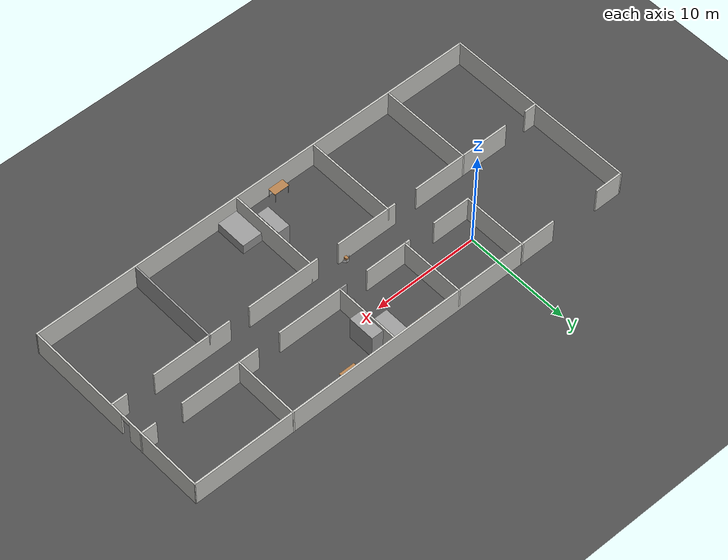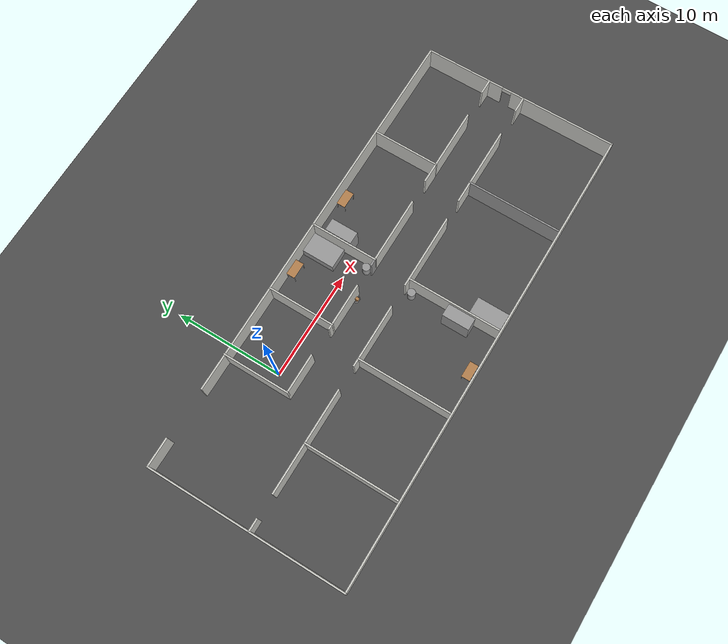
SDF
<sdf version="1.6">
 <world name="default">
  <model name="ground_plane">
   <static>1</static>
   <link name="link">
    <collision name="collision">
     <geometry><plane><normal>0 0 1</normal><size>100 100</size></plane></geometry>
     <surface><friction><ode><mu>100</mu><mu2>50</mu2></ode></friction></surface>
    </collision>
    <visual name="visual">
     <cast_shadows>0</cast_shadows>
     <geometry><plane><normal>0 0 1</normal><size>100 100</size></plane></geometry>
     <material>
      <script><uri>file://media/materials/scripts/gazebo.material</uri><name>Gazebo/DarkGrey</name></script>
     </material>
    </visual>
   </link>
  </model>
  <model name="hospital_base">
   <pose>10.0746 -4.90069 0 0 -0 0</pose>
   <link name="Wall_0">
    <collision name="Wall_0_Collision">
     <geometry><box><size>2.75 0.15 2.5</size></box></geometry>
     <pose>0 0 1.25 0 -0 0</pose>
    </collision>
    <visual name="Wall_0_Visual">
     <pose>0 0 1.25 0 -0 0</pose>
     <geometry><box><size>2.75 0.15 2.5</size></box></geometry>
     <material>
      <script><uri>file://media/materials/scripts/gazebo.material</uri><name>Gazebo/CeilingTiled</name></script>
      <ambient>1 1 1 1</ambient>
     </material>
     <meta><layer>0</layer></meta>
    </visual>
    <pose>-20.6253 9.1753 0 0 -0 0</pose>
   </link>
   <link name="Wall_10">
    <collision name="Wall_10_Collision">
     <geometry><box><size>3.75 0.15 2.5</size></box></geometry>
     <pose>0 0 1.25 0 -0 0</pose>
    </collision>
    <visual name="Wall_10_Visual">
     <pose>0 0 1.25 0 -0 0</pose>
     <geometry><box><size>3.75 0.15 2.5</size></box></geometry>
     <material>
      <script><uri>file://media/materials/scripts/gazebo.material</uri><name>Gazebo/CeilingTiled</name></script>
      <ambient>1 1 1 1</ambient>
     </material>
     <meta><layer>0</layer></meta>
    </visual>
    <pose>-9.4395 3.0224 0 0 -0 0</pose>
   </link>
   <link name="Wall_12">
    <collision name="Wall_12_Collision">
     <geometry><box><size>4.5 0.15 2.5</size></box></geometry>
     <pose>0 0 1.25 0 -0 0</pose>
    </collision>
    <visual name="Wall_12_Visual">
     <pose>0 0 1.25 0 -0 0</pose>
     <geometry><box><size>4.5 0.15 2.5</size></box></geometry>
     <material>
      <script><uri>file://media/materials/scripts/gazebo.material</uri><name>Gazebo/CeilingTiled</name></script>
      <ambient>1 1 1 1</ambient>
     </material>
     <meta><layer>0</layer></meta>
    </visual>
    <pose>-2.8223 2.986 0 0 -0 0</pose>
   </link>
   <link name="Wall_14">
    <collision name="Wall_14_Collision">
     <geometry><box><size>6.25 0.15 2.5</size></box></geometry>
     <pose>0 0 1.25 0 -0 0</pose>
    </collision>
    <visual name="Wall_14_Visual">
     <pose>0 0 1.25 0 -0 0</pose>
     <geometry><box><size>6.25 0.15 2.5</size></box></geometry>
     <material>
      <script><uri>file://media/materials/scripts/gazebo.material</uri><name>Gazebo/CeilingTiled</name></script>
      <ambient>1 1 1 1</ambient>
     </material>
     <meta><layer>0</layer></meta>
    </visual>
    <pose>-4.5741 6.0195 0 0 -0 -1.5708</pose>
   </link>
   <link name="Wall_16">
    <collision name="Wall_16_Collision">
     <geometry><box><size>0.75 0.15 2.5</size></box></geometry>
     <pose>0 0 1.25 0 -0 0</pose>
    </collision>
    <visual name="Wall_16_Visual">
     <pose>0 0 1.25 0 -0 0</pose>
     <geometry><box><size>0.75 0.15 2.5</size></box></geometry>
     <material>
      <script><uri>file://media/materials/scripts/gazebo.material</uri><name>Gazebo/Grey</name></script>
      <ambient>1 1 1 1</ambient>
     </material>
     <meta><layer>0</layer></meta>
    </visual>
    <pose>1.8094 2.9331 0 0 -0 0</pose>
   </link>
   <link name="Wall_17">
    <collision name="Wall_17_Collision">
     <geometry><box><size>6.25 0.15 2.5</size></box></geometry>
     <pose>0 0 1.25 0 -0 0</pose>
    </collision>
    <visual name="Wall_17_Visual">
     <pose>0 0 1.25 0 -0 0</pose>
     <geometry><box><size>6.25 0.15 2.5</size></box></geometry>
     <material>
      <script><uri>file://media/materials/scripts/gazebo.material</uri><name>Gazebo/CeilingTiled</name></script>
      <ambient>1 1 1 1</ambient>
     </material>
     <meta><layer>0</layer></meta>
    </visual>
    <pose>2.1094 5.9831 0 0 -0 1.5708</pose>
   </link>
   <link name="Wall_19">
    <collision name="Wall_19_Collision">
     <geometry><box><size>6.25 0.15 2.5</size></box></geometry>
     <pose>0 0 1.25 0 -0 0</pose>
    </collision>
    <visual name="Wall_19_Visual">
     <pose>0 0 1.25 0 -0 0</pose>
     <geometry><box><size>6.25 0.15 2.5</size></box></geometry>
     <material>
      <script><uri>file://media/materials/scripts/gazebo.material</uri><name>Gazebo/CeilingTiled</name></script>
      <ambient>1 1 1 1</ambient>
     </material>
     <meta><layer>0</layer></meta>
    </visual>
    <pose>5.1594 2.9331 0 0 -0 0</pose>
   </link>
   <link name="Wall_2">
    <collision name="Wall_2_Collision">
     <geometry><box><size>36.5 0.15 2.5</size></box></geometry>
     <pose>0 0 1.25 0 -0 0</pose>
    </collision>
    <visual name="Wall_2_Visual">
     <pose>0 0 1.25 0 -0 0</pose>
     <geometry><box><size>36.5 0.15 2.5</size></box></geometry>
     <material>
      <script><uri>file://media/materials/scripts/gazebo.material</uri><name>Gazebo/CeilingTiled</name></script>
      <ambient>1 1 1 1</ambient>
     </material>
     <meta><layer>0</layer></meta>
    </visual>
    <pose>3.6028 9.0695 0 0 -0 0</pose>
   </link>
   <link name="Wall_23">
    <collision name="Wall_23_Collision">
     <geometry><box><size>7.5 0.15 2.5</size></box></geometry>
     <pose>0 0 1.25 0 -0 0</pose>
    </collision>
    <visual name="Wall_23_Visual">
     <pose>0 0 1.25 0 -0 0</pose>
     <geometry><box><size>7.5 0.15 2.5</size></box></geometry>
     <material>
      <script><uri>file://media/materials/scripts/gazebo.material</uri><name>Gazebo/CeilingTiled</name></script>
      <ambient>1 1 1 1</ambient>
     </material>
     <meta><layer>0</layer></meta>
    </visual>
    <pose>14.1774 2.986 0 0 -0 0</pose>
   </link>
   <link name="Wall_25">
    <collision name="Wall_25_Collision">
     <geometry><box><size>1.5 0.15 2.5</size></box></geometry>
     <pose>0 0 1.25 0 -0 0</pose>
    </collision>
    <visual name="Wall_25_Visual">
     <pose>0 0 1.25 0 -0 0</pose>
     <geometry><box><size>1.5 0.15 2.5</size></box></geometry>
     <material>
      <script><uri>file://media/materials/scripts/gazebo.material</uri><name>Gazebo/CeilingTiled</name></script>
      <ambient>1 1 1 1</ambient>
     </material>
     <meta><layer>0</layer></meta>
    </visual>
    <pose>21.1755 3.0389 0 0 -0 0</pose>
   </link>
   <link name="Wall_27">
    <collision name="Wall_27_Collision">
     <geometry><box><size>6.25 0.15 2.5</size></box></geometry>
     <pose>0 0 1.25 0 -0 0</pose>
    </collision>
    <visual name="Wall_27_Visual">
     <pose>0 0 1.25 0 -0 0</pose>
     <geometry><box><size>6.25 0.15 2.5</size></box></geometry>
     <material>
      <script><uri>file://media/materials/scripts/gazebo.material</uri><name>Gazebo/CeilingTiled</name></script>
      <ambient>1 1 1 1</ambient>
     </material>
     <meta><layer>0</layer></meta>
    </visual>
    <pose>12.301 6.036 0 0 -0 1.5708</pose>
   </link>
   <link name="Wall_29">
    <collision name="Wall_29_Collision">
     <geometry><box><size>1.25 0.15 2.5</size></box></geometry>
     <pose>0 0 1.25 0 -0 0</pose>
    </collision>
    <visual name="Wall_29_Visual">
     <pose>0 0 1.25 0 -0 0</pose>
     <geometry><box><size>1.25 0.15 2.5</size></box></geometry>
     <material>
      <script><uri>file://media/materials/scripts/gazebo.material</uri><name>Gazebo/CeilingTiled</name></script>
      <ambient>1 1 1 1</ambient>
     </material>
     <meta><layer>0</layer></meta>
    </visual>
    <pose>-21.3753 -0.3996 0 0 -0 0</pose>
   </link>
   <link name="Wall_31">
    <collision name="Wall_31_Collision">
     <geometry><box><size>9.75 0.15 2.5</size></box></geometry>
     <pose>0 0 1.25 0 -0 0</pose>
    </collision>
    <visual name="Wall_31_Visual">
     <pose>0 0 1.25 0 -0 0</pose>
     <geometry><box><size>9.75 0.15 2.5</size></box></geometry>
     <material>
      <script><uri>file://media/materials/scripts/gazebo.material</uri><name>Gazebo/CeilingTiled</name></script>
      <ambient>1 1 1 1</ambient>
     </material>
     <meta><layer>0</layer></meta>
    </visual>
    <pose>-13.7397 -0.3996 0 0 -0 0</pose>
   </link>
   <link name="Wall_33">
    <collision name="Wall_33_Collision">
     <geometry><box><size>6 0.15 2.5</size></box></geometry>
     <pose>0 0 1.25 0 -0 0</pose>
    </collision>
    <visual name="Wall_33_Visual">
     <pose>0 0 1.25 0 -0 0</pose>
     <geometry><box><size>6 0.15 2.5</size></box></geometry>
     <material>
      <script><uri>file://media/materials/scripts/gazebo.material</uri><name>Gazebo/CeilingTiled</name></script>
      <ambient>1 1 1 1</ambient>
     </material>
     <meta><layer>0</layer></meta>
    </visual>
    <pose>-3.6593 -0.3996 0 0 -0 0</pose>
   </link>
   <link name="Wall_35">
    <collision name="Wall_35_Collision">
     <geometry><box><size>7 0.15 2.5</size></box></geometry>
     <pose>0 0 1.25 0 -0 0</pose>
    </collision>
    <visual name="Wall_35_Visual">
     <pose>0 0 1.25 0 -0 0</pose>
     <geometry><box><size>7 0.15 2.5</size></box></geometry>
     <material>
      <script><uri>file://media/materials/scripts/gazebo.material</uri><name>Gazebo/CeilingTiled</name></script>
      <ambient>1 1 1 1</ambient>
     </material>
     <meta><layer>0</layer></meta>
    </visual>
    <pose>4.9344 -0.3996 0 0 -0 0</pose>
   </link>
   <link name="Wall_37">
    <collision name="Wall_37_Collision">
     <geometry><box><size>7.5 0.15 2.5</size></box></geometry>
     <pose>0 0 1.25 0 -0 0</pose>
    </collision>
    <visual name="Wall_37_Visual">
     <pose>0 0 1.25 0 -0 0</pose>
     <geometry><box><size>7.5 0.15 2.5</size></box></geometry>
     <material>
      <script><uri>file://media/materials/scripts/gazebo.material</uri><name>Gazebo/CeilingTiled</name></script>
      <ambient>1 1 1 1</ambient>
     </material>
     <meta><layer>0</layer></meta>
    </visual>
    <pose>14.0716 -0.3996 0 0 -0 0</pose>
   </link>
   <link name="Wall_39">
    <collision name="Wall_39_Collision">
     <geometry><box><size>1.5 0.15 2.5</size></box></geometry>
     <pose>0 0 1.25 0 -0 0</pose>
    </collision>
    <visual name="Wall_39_Visual">
     <pose>0 0 1.25 0 -0 0</pose>
     <geometry><box><size>1.5 0.15 2.5</size></box></geometry>
     <material>
      <script><uri>file://media/materials/scripts/gazebo.material</uri><name>Gazebo/CeilingTiled</name></script>
      <ambient>1 1 1 1</ambient>
     </material>
     <meta><layer>0</layer></meta>
    </visual>
    <pose>21.1226 -0.3996 0 0 -0 0</pose>
   </link>
   <link name="Wall_41">
    <collision name="Wall_41_Collision">
     <geometry><box><size>8.75 0.15 2.5</size></box></geometry>
     <pose>0 0 1.25 0 -0 0</pose>
    </collision>
    <visual name="Wall_41_Visual">
     <pose>0 0 1.25 0 -0 0</pose>
     <geometry><box><size>8.75 0.15 2.5</size></box></geometry>
     <material>
      <script><uri>file://media/materials/scripts/gazebo.material</uri><name>Gazebo/Grey</name></script>
      <ambient>1 1 1 1</ambient>
     </material>
     <meta><layer>0</layer></meta>
    </visual>
    <pose>12.3539 -4.6996 0 0 -0 -1.5708</pose>
   </link>
   <link name="Wall_43">
    <collision name="Wall_43_Collision">
     <geometry><box><size>8.75 0.15 2.5</size></box></geometry>
     <pose>0 0 1.25 0 -0 0</pose>
    </collision>
    <visual name="Wall_43_Visual">
     <pose>0 0 1.25 0 -0 0</pose>
     <geometry><box><size>8.75 0.15 2.5</size></box></geometry>
     <material>
      <script><uri>file://media/materials/scripts/gazebo.material</uri><name>Gazebo/CeilingTiled</name></script>
      <ambient>1 1 1 1</ambient>
     </material>
     <meta><layer>0</layer></meta>
    </visual>
    <pose>2.1442 -4.6996 0 0 -0 -1.5708</pose>
   </link>
   <link name="Wall_45">
    <collision name="Wall_45_Collision">
     <geometry><box><size>8.75 0.15 2.5</size></box></geometry>
     <pose>0 0 1.25 0 -0 0</pose>
    </collision>
    <visual name="Wall_45_Visual">
     <pose>0 0 1.25 0 -0 0</pose>
     <geometry><box><size>8.75 0.15 2.5</size></box></geometry>
     <material>
      <script><uri>file://media/materials/scripts/gazebo.material</uri><name>Gazebo/CeilingTiled</name></script>
      <ambient>1 1 1 1</ambient>
     </material>
     <meta><layer>0</layer></meta>
    </visual>
    <pose>-5.8966 -4.6996 0 0 -0 -1.5708</pose>
   </link>
   <link name="Wall_47">
    <collision name="Wall_47_Collision">
     <geometry><box><size>8.75 0.15 2.5</size></box></geometry>
     <pose>0 0 1.25 0 -0 0</pose>
    </collision>
    <visual name="Wall_47_Visual">
     <pose>0 0 1.25 0 -0 0</pose>
     <geometry><box><size>8.75 0.15 2.5</size></box></geometry>
     <material>
      <script><uri>file://media/materials/scripts/gazebo.material</uri><name>Gazebo/CeilingTiled</name></script>
      <ambient>1 1 1 1</ambient>
     </material>
     <meta><layer>0</layer></meta>
    </visual>
    <pose>-13.9374 -4.6996 0 0 -0 -1.5708</pose>
   </link>
   <link name="Wall_5">
    <collision name="Wall_5_Collision">
     <geometry><box><size>18.5 0.15 2.5</size></box></geometry>
     <pose>0 0 1.25 0 -0 0</pose>
    </collision>
    <visual name="Wall_5_Visual">
     <pose>0 0 1.25 0 -0 0</pose>
     <geometry><box><size>18.5 0.15 2.5</size></box></geometry>
     <material>
      <script><uri>file://media/materials/scripts/gazebo.material</uri><name>Gazebo/CeilingTiled</name></script>
      <ambient>1 1 1 1</ambient>
     </material>
     <meta><layer>0</layer></meta>
    </visual>
    <pose>-21.9253 0.0003 0 0 -0 -1.5708</pose>
   </link>
   <link name="Wall_6">
    <collision name="Wall_6_Collision">
     <geometry><box><size>44 0.15 2.5</size></box></geometry>
     <pose>0 0 1.25 0 -0 0</pose>
    </collision>
    <visual name="Wall_6_Visual">
     <pose>0 0 1.25 0 -0 0</pose>
     <geometry><box><size>44 0.15 2.5</size></box></geometry>
     <material>
      <script><uri>file://media/materials/scripts/gazebo.material</uri><name>Gazebo/CeilingTiled</name></script>
      <ambient>1 1 1 1</ambient>
     </material>
     <meta><layer>0</layer></meta>
    </visual>
    <pose>-0.0003 -9.1747 0 0 -0 0</pose>
   </link>
   <link name="Wall_7">
    <pose>21.8513 -0.0526 0 0 -0 1.57885</pose>
    <visual name="Wall_7_Visual_0">
     <pose>-4.17652 0 1.25 0 -0 0</pose>
     <geometry><box><size>10.0418 0.15 2.5</size></box></geometry>
     <material>
      <script><uri>file://media/materials/scripts/gazebo.material</uri><name>Gazebo/CeilingTiled</name></script>
      <ambient>1 1 1 1</ambient>
     </material>
     <meta><layer>0</layer></meta>
    </visual>
    <collision name="Wall_7_Collision_0">
     <geometry><box><size>10.0418 0.15 2.5</size></box></geometry>
     <pose>-4.17652 0 1.25 0 -0 0</pose>
    </collision>
    <visual name="Wall_7_Visual_1">
     <pose>5.47088 0 1.25 0 -0 0</pose>
     <geometry><box><size>7.45303 0.15 2.5</size></box></geometry>
     <material>
      <script><uri>file://media/materials/scripts/gazebo.material</uri><name>Gazebo/CeilingTiled</name></script>
      <ambient>1 1 1 1</ambient>
     </material>
     <meta><layer>0</layer></meta>
    </visual>
    <collision name="Wall_7_Collision_1">
     <geometry><box><size>7.45303 0.15 2.5</size></box></geometry>
     <pose>5.47088 0 1.25 0 -0 0</pose>
    </collision>
    <visual name="Wall_7_Visual_2">
     <pose>1.29436 0 2.25 0 -0 0</pose>
     <geometry><box><size>0.9 0.15 0.5</size></box></geometry>
     <material>
      <script><uri>file://media/materials/scripts/gazebo.material</uri><name>Gazebo/CeilingTiled</name></script>
      <ambient>1 1 1 1</ambient>
     </material>
     <meta><layer>0</layer></meta>
    </visual>
    <collision name="Wall_7_Collision_2">
     <geometry><box><size>0.9 0.15 0.5</size></box></geometry>
     <pose>1.29436 0 2.25 0 -0 0</pose>
    </collision>
   </link>
   <link name="Wall_9">
    <collision name="Wall_9_Collision">
     <geometry><box><size>6.25 0.15 2.5</size></box></geometry>
     <pose>0 0 1.25 0 -0 0</pose>
    </collision>
    <visual name="Wall_9_Visual">
     <pose>0 0 1.25 0 -0 0</pose>
     <geometry><box><size>6.25 0.15 2.5</size></box></geometry>
     <material>
      <script><uri>file://media/materials/scripts/gazebo.material</uri><name>Gazebo/CeilingTiled</name></script>
      <ambient>1 1 1 1</ambient>
     </material>
     <meta><layer>0</layer></meta>
    </visual>
    <pose>-11.2395 6.0724 0 0 -0 -1.5708</pose>
   </link>
   <static>1</static>
  </model>
  <model name="unit_box_1_clone_1">
   <pose>13.3078 -12.4311 0.499989 -0 -1.2e-05 -6e-06</pose>
   <link name="link">
    <inertial>
     <mass>1</mass>
     <inertia>
      <ixx>0.166667</ixx>
      <ixy>0</ixy>
      <ixz>0</ixz>
      <iyy>0.166667</iyy>
      <iyz>0</iyz>
      <izz>0.166667</izz>
     </inertia>
    </inertial>
    <collision name="collision"><geometry><box><size>1.90543 2.99439 1</size></box></geometry></collision>
    <visual name="visual">
     <geometry><box><size>1.90543 2.99439 1</size></box></geometry>
     <material>
      <script><name>Gazebo/Grey</name><uri>file://media/materials/scripts/gazebo.material</uri></script>
     </material>
    </visual>
   </link>
  </model>
  <model name="unit_box_1_clone_6">
   <pose>11.0495 2.53281 0.499989 0 1.2e-05 -0.000166</pose>
   <link name="link">
    <inertial>
     <mass>1</mass>
     <inertia>
      <ixx>0.166667</ixx>
      <ixy>0</ixy>
      <ixz>0</ixz>
      <iyy>0.166667</iyy>
      <iyz>0</iyz>
      <izz>0.166667</izz>
     </inertia>
    </inertial>
    <collision name="collision"><geometry><box><size>1.90543 2.99439 1</size></box></geometry></collision>
    <visual name="visual">
     <geometry><box><size>1.90543 2.99439 1</size></box></geometry>
     <material>
      <script><name>Gazebo/Grey</name><uri>file://media/materials/scripts/gazebo.material</uri></script>
     </material>
    </visual>
   </link>
  </model>
  <model name="unit_cylinder_clone_0">
   <pose>11.6867 -5.87007 0.499992 0 -0 0</pose>
   <link name="link">
    <inertial>
     <mass>1</mass>
     <inertia><ixx>0.145833</ixx><ixy>0</ixy><ixz>0</ixz><iyy>0.145833</iyy><iyz>0</iyz><izz>0.125</izz></inertia>
    </inertial>
    <collision name="collision">
     <geometry><cylinder><radius>0.361483</radius><length>1</length></cylinder></geometry>
    </collision>
    <visual name="visual">
     <geometry><cylinder><radius>0.361483</radius><length>1</length></cylinder></geometry>
     <material>
      <script><name>Gazebo/Grey</name><uri>file://media/materials/scripts/gazebo.material</uri></script>
     </material>
    </visual>
   </link>
  </model>
  <model name="unit_box_2_clone_0">
   <pose>11.4893 -10.5003 1.19041 0 -0 8.2e-05</pose>
   <link name="link">
    <inertial>
     <mass>1</mass>
     <inertia>
      <ixx>0.166667</ixx>
      <ixy>0</ixy>
      <ixz>0</ixz>
      <iyy>0.166667</iyy>
      <iyz>0</iyz>
      <izz>0.166667</izz>
     </inertia>
    </inertial>
    <collision name="collision"><geometry><box><size>1.13758 2.51147 2.38082</size></box></geometry></collision>
    <visual name="visual">
     <geometry><box><size>1.13758 2.51147 2.38082</size></box></geometry>
     <material>
      <script><name>Gazebo/Grey</name><uri>file://media/materials/scripts/gazebo.material</uri></script>
     </material>
    </visual>
   </link>
  </model>
  <model name="unit_box_2_clone_4">
   <pose>12.9009 1.81429 1.1904 4e-06 1e-06 8.3e-05</pose>
   <link name="link">
    <inertial>
     <mass>1</mass>
     <inertia>
      <ixx>0.166667</ixx>
      <ixy>0</ixy>
      <ixz>0</ixz>
      <iyy>0.166667</iyy>
      <iyz>0</iyz>
      <izz>0.166667</izz>
     </inertia>
    </inertial>
    <collision name="collision"><geometry><box><size>1.13758 2.51147 2.38082</size></box></geometry></collision>
    <visual name="visual">
     <geometry><box><size>1.13758 2.51147 2.38082</size></box></geometry>
     <material>
      <script><name>Gazebo/Grey</name><uri>file://media/materials/scripts/gazebo.material</uri></script>
     </material>
    </visual>
   </link>
  </model>
  <model name="table_clone_0">
   <static>1</static>
   <link name="link">
    <collision name="surface">
     <pose>0 0 1 0 -0 0</pose>
     <geometry><box><size>1.5 0.8 0.03</size></box></geometry>
     <surface><friction><ode><mu>0.6</mu><mu2>0.6</mu2></ode></friction></surface>
    </collision>
    <visual name="visual1">
     <pose>0 0 1 0 -0 0</pose>
     <geometry><box><size>1.5 0.8 0.03</size></box></geometry>
     <material>
      <script><uri>file://media/materials/scripts/gazebo.material</uri><name>Gazebo/Wood</name></script>
     </material>
    </visual>
    <collision name="front_left_leg">
     <pose>0.68 0.38 0.5 0 -0 0</pose>
     <geometry><cylinder><radius>0.02</radius><length>1</length></cylinder></geometry>
    </collision>
    <visual name="front_left_leg">
     <pose>0.68 0.38 0.5 0 -0 0</pose>
     <geometry><cylinder><radius>0.02</radius><length>1</length></cylinder></geometry>
     <material>
      <script><uri>file://media/materials/scripts/gazebo.material</uri><name>Gazebo/Grey</name></script>
     </material>
    </visual>
    <collision name="front_right_leg">
     <pose>0.68 -0.38 0.5 0 -0 0</pose>
     <geometry><cylinder><radius>0.02</radius><length>1</length></cylinder></geometry>
    </collision>
    <visual name="front_right_leg">
     <pose>0.68 -0.38 0.5 0 -0 0</pose>
     <geometry><cylinder><radius>0.02</radius><length>1</length></cylinder></geometry>
     <material>
      <script><uri>file://media/materials/scripts/gazebo.material</uri><name>Gazebo/Grey</name></script>
     </material>
    </visual>
    <collision name="back_right_leg">
     <pose>-0.68 -0.38 0.5 0 -0 0</pose>
     <geometry><cylinder><radius>0.02</radius><length>1</length></cylinder></geometry>
    </collision>
    <visual name="back_right_leg">
     <pose>-0.68 -0.38 0.5 0 -0 0</pose>
     <geometry><cylinder><radius>0.02</radius><length>1</length></cylinder></geometry>
     <material>
      <script><uri>file://media/materials/scripts/gazebo.material</uri><name>Gazebo/Grey</name></script>
     </material>
    </visual>
    <collision name="back_left_leg">
     <pose>-0.68 0.38 0.5 0 -0 0</pose>
     <geometry><cylinder><radius>0.02</radius><length>1</length></cylinder></geometry>
    </collision>
    <visual name="back_left_leg">
     <pose>-0.68 0.38 0.5 0 -0 0</pose>
     <geometry><cylinder><radius>0.02</radius><length>1</length></cylinder></geometry>
     <material>
      <script><uri>file://media/materials/scripts/gazebo.material</uri><name>Gazebo/Grey</name></script>
     </material>
    </visual>
   </link>
   <pose>8.32318 -13.5079 0 0 -0 0</pose>
  </model>
  <model name="table_clone_4">
   <static>1</static>
   <link name="link">
    <collision name="surface">
     <pose>0 0 1 0 -0 0</pose>
     <geometry><box><size>1.5 0.8 0.03</size></box></geometry>
     <surface><friction><ode><mu>0.6</mu><mu2>0.6</mu2></ode></friction></surface>
    </collision>
    <visual name="visual1">
     <pose>0 0 1 0 -0 0</pose>
     <geometry><box><size>1.5 0.8 0.03</size></box></geometry>
     <material>
      <script><uri>file://media/materials/scripts/gazebo.material</uri><name>Gazebo/Wood</name></script>
     </material>
    </visual>
    <collision name="front_left_leg">
     <pose>0.68 0.38 0.5 0 -0 0</pose>
     <geometry><cylinder><radius>0.02</radius><length>1</length></cylinder></geometry>
    </collision>
    <visual name="front_left_leg">
     <pose>0.68 0.38 0.5 0 -0 0</pose>
     <geometry><cylinder><radius>0.02</radius><length>1</length></cylinder></geometry>
     <material>
      <script><uri>file://media/materials/scripts/gazebo.material</uri><name>Gazebo/Grey</name></script>
     </material>
    </visual>
    <collision name="front_right_leg">
     <pose>0.68 -0.38 0.5 0 -0 0</pose>
     <geometry><cylinder><radius>0.02</radius><length>1</length></cylinder></geometry>
    </collision>
    <visual name="front_right_leg">
     <pose>0.68 -0.38 0.5 0 -0 0</pose>
     <geometry><cylinder><radius>0.02</radius><length>1</length></cylinder></geometry>
     <material>
      <script><uri>file://media/materials/scripts/gazebo.material</uri><name>Gazebo/Grey</name></script>
     </material>
    </visual>
    <collision name="back_right_leg">
     <pose>-0.68 -0.38 0.5 0 -0 0</pose>
     <geometry><cylinder><radius>0.02</radius><length>1</length></cylinder></geometry>
    </collision>
    <visual name="back_right_leg">
     <pose>-0.68 -0.38 0.5 0 -0 0</pose>
     <geometry><cylinder><radius>0.02</radius><length>1</length></cylinder></geometry>
     <material>
      <script><uri>file://media/materials/scripts/gazebo.material</uri><name>Gazebo/Grey</name></script>
     </material>
    </visual>
    <collision name="back_left_leg">
     <pose>-0.68 0.38 0.5 0 -0 0</pose>
     <geometry><cylinder><radius>0.02</radius><length>1</length></cylinder></geometry>
    </collision>
    <visual name="back_left_leg">
     <pose>-0.68 0.38 0.5 0 -0 0</pose>
     <geometry><cylinder><radius>0.02</radius><length>1</length></cylinder></geometry>
     <material>
      <script><uri>file://media/materials/scripts/gazebo.material</uri><name>Gazebo/Grey</name></script>
     </material>
    </visual>
   </link>
   <pose>16.0786 3.48932 0 0 -0 0</pose>
  </model>
  <model name="table_clone_6">
   <static>1</static>
   <link name="link">
    <collision name="surface">
     <pose>0 0 1 0 -0 0</pose>
     <geometry><box><size>1.5 0.8 0.03</size></box></geometry>
     <surface><friction><ode><mu>0.6</mu><mu2>0.6</mu2></ode></friction></surface>
    </collision>
    <visual name="visual1">
     <pose>0 0 1 0 -0 0</pose>
     <geometry><box><size>1.5 0.8 0.03</size></box></geometry>
     <material>
      <script><uri>file://media/materials/scripts/gazebo.material</uri><name>Gazebo/Wood</name></script>
     </material>
    </visual>
    <collision name="front_left_leg">
     <pose>0.68 0.38 0.5 0 -0 0</pose>
     <geometry><cylinder><radius>0.02</radius><length>1</length></cylinder></geometry>
    </collision>
    <visual name="front_left_leg">
     <pose>0.68 0.38 0.5 0 -0 0</pose>
     <geometry><cylinder><radius>0.02</radius><length>1</length></cylinder></geometry>
     <material>
      <script><uri>file://media/materials/scripts/gazebo.material</uri><name>Gazebo/Grey</name></script>
     </material>
    </visual>
    <collision name="front_right_leg">
     <pose>0.68 -0.38 0.5 0 -0 0</pose>
     <geometry><cylinder><radius>0.02</radius><length>1</length></cylinder></geometry>
    </collision>
    <visual name="front_right_leg">
     <pose>0.68 -0.38 0.5 0 -0 0</pose>
     <geometry><cylinder><radius>0.02</radius><length>1</length></cylinder></geometry>
     <material>
      <script><uri>file://media/materials/scripts/gazebo.material</uri><name>Gazebo/Grey</name></script>
     </material>
    </visual>
    <collision name="back_right_leg">
     <pose>-0.68 -0.38 0.5 0 -0 0</pose>
     <geometry><cylinder><radius>0.02</radius><length>1</length></cylinder></geometry>
    </collision>
    <visual name="back_right_leg">
     <pose>-0.68 -0.38 0.5 0 -0 0</pose>
     <geometry><cylinder><radius>0.02</radius><length>1</length></cylinder></geometry>
     <material>
      <script><uri>file://media/materials/scripts/gazebo.material</uri><name>Gazebo/Grey</name></script>
     </material>
    </visual>
    <collision name="back_left_leg">
     <pose>-0.68 0.38 0.5 0 -0 0</pose>
     <geometry><cylinder><radius>0.02</radius><length>1</length></cylinder></geometry>
    </collision>
    <visual name="back_left_leg">
     <pose>-0.68 0.38 0.5 0 -0 0</pose>
     <geometry><cylinder><radius>0.02</radius><length>1</length></cylinder></geometry>
     <material>
      <script><uri>file://media/materials/scripts/gazebo.material</uri><name>Gazebo/Grey</name></script>
     </material>
    </visual>
   </link>
   <pose>8.34509 3.69914 0 0 -0 0</pose>
  </model>
  <model name="unit_cylinder_clone_3">
   <pose>11.6267 -1.40121 0.499992 0 -0 0</pose>
   <link name="link">
    <inertial>
     <mass>1</mass>
     <inertia><ixx>0.145833</ixx><ixy>0</ixy><ixz>0</ixz><iyy>0.145833</iyy><iyz>0</iyz><izz>0.125</izz></inertia>
    </inertial>
    <collision name="collision">
     <geometry><cylinder><radius>0.361483</radius><length>1</length></cylinder></geometry>
    </collision>
    <visual name="visual">
     <geometry><cylinder><radius>0.361483</radius><length>1</length></cylinder></geometry>
     <material>
      <script><name>Gazebo/Grey</name><uri>file://media/materials/scripts/gazebo.material</uri></script>
     </material>
    </visual>
   </link>
  </model>
  <model name="Support_box_wood_clone_0">
   <link name="link">
    <inertial>
     <mass>0.0406949</mass>
     <inertia>
      <ixx>0.00114102</ixx>
      <ixy>0</ixy>
      <ixz>0</ixz>
      <iyy>0.00102768</iyy>
      <iyz>0</iyz>
      <izz>0.000581951</izz>
     </inertia>
    </inertial>
    <pose>0.062754 0.860403 -0.243846 0 -0 0</pose>
    <visual name="visual">
     <geometry><box><size>0.252854 0.320175 0.483682</size></box></geometry>
     <material>
      <script><name>Gazebo/Wood</name><uri>file://media/materials/scripts/gazebo.material</uri></script>
      <shader type="vertex"><normal_map>__default__</normal_map></shader>
      <ambient>0.3 0.3 0.3 1</ambient>
      <diffuse>0.7 0.7 0.7 1</diffuse>
      <specular>0.01 0.01 0.01 1</specular>
      <emissive>0 0 0 1</emissive>
     </material>
    </visual>
    <visual name="ModelPreview_4::link::visual_1">
     <geometry><box><size>0.252854 0.320175 0.483682</size></box></geometry>
     <material>
      <script><name>Gazebo/Wood</name><uri>file://media/materials/scripts/gazebo.material</uri></script>
      <shader type="vertex"><normal_map>__default__</normal_map></shader>
      <ambient>0.3 0.3 0.3 1</ambient>
      <diffuse>0.7 0.7 0.7 1</diffuse>
      <specular>0.01 0.01 0.01 1</specular>
      <emissive>0 0 0 1</emissive>
     </material>
    </visual>
    <collision name="collision">
     <geometry><box><size>0.262854 0.320175 0.483683</size></box></geometry>
     <surface>
      <friction>
       <ode><mu>1</mu><mu2>1</mu2><fdir1>0 0 0</fdir1><slip1>0</slip1><slip2>0</slip2></ode>
       <torsional>
        <coefficient>1</coefficient>
        <patch_radius>0</patch_radius>
        <surface_radius>0</surface_radius>
        <use_patch_radius>1</use_patch_radius>
        <ode><slip>0</slip></ode>
       </torsional>
      </friction>
      <bounce><restitution_coefficient>0</restitution_coefficient><threshold>1e+06</threshold></bounce>
      <contact>
       <collide_without_contact>0</collide_without_contact>
       <collide_without_contact_bitmask>1</collide_without_contact_bitmask>
       <collide_bitmask>1</collide_bitmask>
       <ode>
        <soft_cfm>0</soft_cfm>
        <soft_erp>0.2</soft_erp>
        <kp>1e+13</kp>
        <kd>1</kd>
        <max_vel>0.01</max_vel>
        <min_depth>0</min_depth>
       </ode>
       <bullet>
        <split_impulse>1</split_impulse>
        <split_impulse_penetration_threshold>-0.01</split_impulse_penetration_threshold>
        <soft_cfm>0</soft_cfm>
        <soft_erp>0.2</soft_erp>
        <kp>1e+13</kp>
        <kd>1</kd>
       </bullet>
      </contact>
     </surface>
    </collision>
   </link>
   <static>0</static>
   <pose>8.67328 -5.92559 0.485688 0 0 -2e-05</pose>
  </model>
  <model name="Support_box_wood_clone_1_clone_clone">
   <link name="link">
    <inertial>
     <mass>0.0406949</mass>
     <inertia>
      <ixx>0.00114102</ixx>
      <ixy>0</ixy>
      <ixz>0</ixz>
      <iyy>0.00102768</iyy>
      <iyz>0</iyz>
      <izz>0.000581951</izz>
     </inertia>
    </inertial>
    <pose>0.062754 0.860403 -0.243846 0 -0 0</pose>
    <visual name="visual">
     <geometry><box><size>0.252854 0.320175 0.483682</size></box></geometry>
     <material>
      <script><name>Gazebo/Wood</name><uri>file://media/materials/scripts/gazebo.material</uri></script>
      <shader type="vertex"><normal_map>__default__</normal_map></shader>
      <ambient>0.3 0.3 0.3 1</ambient>
      <diffuse>0.7 0.7 0.7 1</diffuse>
      <specular>0.01 0.01 0.01 1</specular>
      <emissive>0 0 0 1</emissive>
     </material>
    </visual>
    <visual name="ModelPreview_4::link::visual_1">
     <geometry><box><size>0.252854 0.320175 0.483682</size></box></geometry>
     <material>
      <script><name>Gazebo/Wood</name><uri>file://media/materials/scripts/gazebo.material</uri></script>
      <shader type="vertex"><normal_map>__default__</normal_map></shader>
      <ambient>0.3 0.3 0.3 1</ambient>
      <diffuse>0.7 0.7 0.7 1</diffuse>
      <specular>0.01 0.01 0.01 1</specular>
      <emissive>0 0 0 1</emissive>
     </material>
    </visual>
    <collision name="collision">
     <geometry><box><size>0.262854 0.320175 0.483683</size></box></geometry>
     <surface>
      <friction>
       <ode><mu>1</mu><mu2>1</mu2><fdir1>0 0 0</fdir1><slip1>0</slip1><slip2>0</slip2></ode>
       <torsional>
        <coefficient>1</coefficient>
        <patch_radius>0</patch_radius>
        <surface_radius>0</surface_radius>
        <use_patch_radius>1</use_patch_radius>
        <ode><slip>0</slip></ode>
       </torsional>
      </friction>
      <bounce><restitution_coefficient>0</restitution_coefficient><threshold>1e+06</threshold></bounce>
      <contact>
       <collide_without_contact>0</collide_without_contact>
       <collide_without_contact_bitmask>1</collide_without_contact_bitmask>
       <collide_bitmask>1</collide_bitmask>
       <ode>
        <soft_cfm>0</soft_cfm>
        <soft_erp>0.2</soft_erp>
        <kp>1e+13</kp>
        <kd>1</kd>
        <max_vel>0.01</max_vel>
        <min_depth>0</min_depth>
       </ode>
       <bullet>
        <split_impulse>1</split_impulse>
        <split_impulse_penetration_threshold>-0.01</split_impulse_penetration_threshold>
        <soft_cfm>0</soft_cfm>
        <soft_erp>0.2</soft_erp>
        <kp>1e+13</kp>
        <kd>1</kd>
       </bullet>
      </contact>
     </surface>
    </collision>
   </link>
   <static>0</static>
   <pose>8.90236 -3.01033 0.485668 1.7e-05 -1.1e-05 -0.001249</pose>
  </model>
  <model name="Aruco tag102">
   <static>1</static>
   <link name="robot_link">
    <visual name="body_visual">
     <geometry><box><size>0.3 0.3 0.02</size></box></geometry>
     <material>
      <script><uri>model://tag_102/materials/scripts/tag.material</uri><name>aruco_tag_102</name></script>
     </material>
    </visual>
   </link>
   <pose>8.73074 -4.89835 0.2 1.57 -0 0</pose>
  </model>
  <model name="Aruco tag102_clone">
   <static>1</static>
   <link name="robot_link">
    <visual name="body_visual">
     <geometry><box><size>0.3 0.3 0.02</size></box></geometry>
     <material>
      <script><uri>model://tag_102/materials/scripts/tag.material</uri><name>aruco_tag_102</name></script>
     </material>
    </visual>
   </link>
   <pose>8.97075 -5.01896 0.2 1.57019 -0.000517 -0.910001</pose>
  </model>
  <model name="Aruco tag102_clone_0">
   <static>1</static>
   <link name="robot_link">
    <visual name="body_visual">
     <geometry><box><size>0.3 0.3 0.02</size></box></geometry>
     <material>
      <script><uri>model://tag_102/materials/scripts/tag.material</uri><name>aruco_tag_102</name></script>
     </material>
    </visual>
   </link>
   <pose>8.48713 -5.02074 0.2 1.57 -0 0.909999</pose>
  </model>
  <model name="Aruco tag107">
   <static>1</static>
   <link name="robot_link">
    <visual name="body_visual">
     <geometry><box><size>0.3 0.3 0.02</size></box></geometry>
     <material>
      <script><uri>model://tag_107/materials/scripts/tag.material</uri><name>aruco_tag_107</name></script>
     </material>
    </visual>
   </link>
   <pose>8.97577 -2.30626 0.2 1.57 -0 0</pose>
  </model>
  <model name="Aruco tag107_clone">
   <static>1</static>
   <link name="robot_link">
    <visual name="body_visual">
     <geometry><box><size>0.3 0.3 0.02</size></box></geometry>
     <material>
      <script><uri>model://tag_107/materials/scripts/tag.material</uri><name>aruco_tag_107</name></script>
     </material>
    </visual>
   </link>
   <pose>8.73112 -2.18456 0.2 1.57 -0 -0.909999</pose>
  </model>
  <model name="Aruco tag107_clone_0">
   <static>1</static>
   <link name="robot_link">
    <visual name="body_visual">
     <geometry><box><size>0.3 0.3 0.02</size></box></geometry>
     <material>
      <script><uri>model://tag_107/materials/scripts/tag.material</uri><name>aruco_tag_107</name></script>
     </material>
    </visual>
   </link>
   <pose>9.22131 -2.18961 0.2 1.57 -0 0.909999</pose>
  </model>
 </world>
</sdf>
